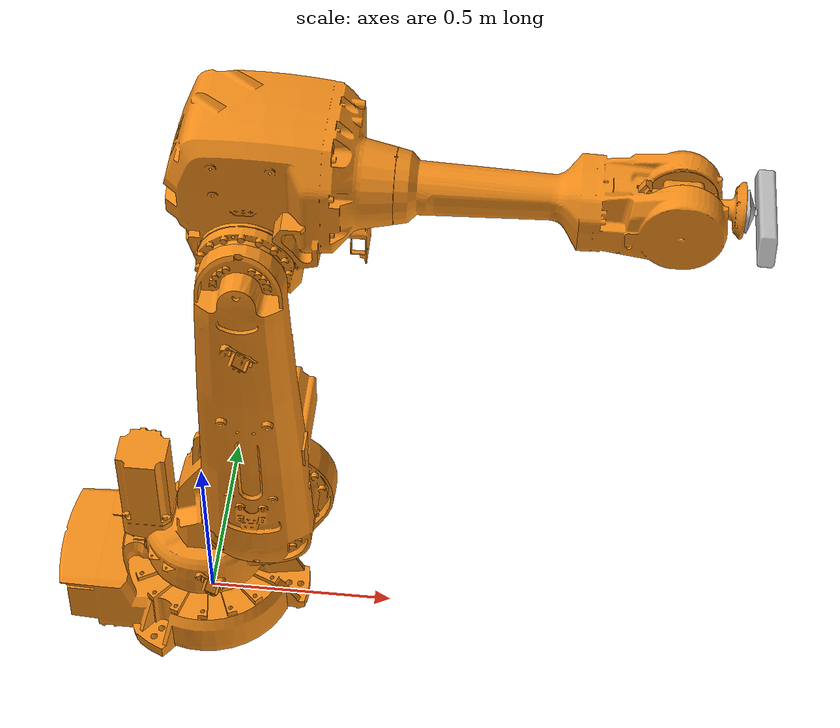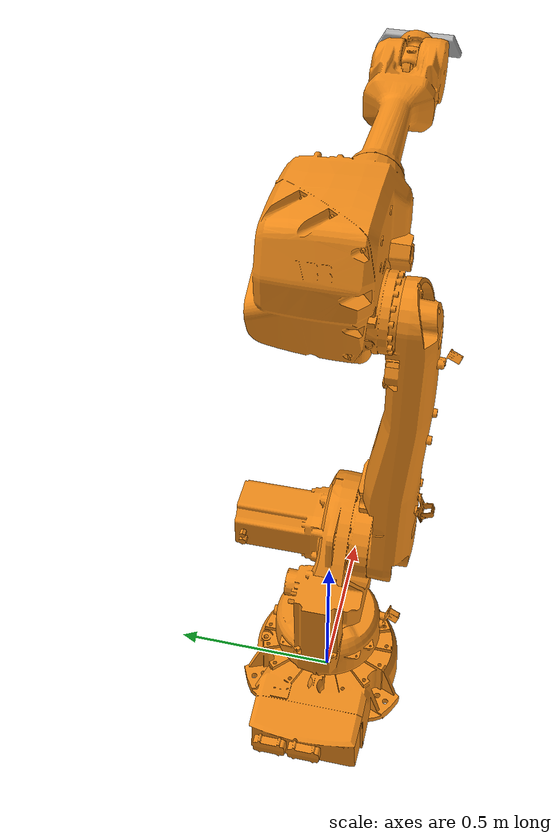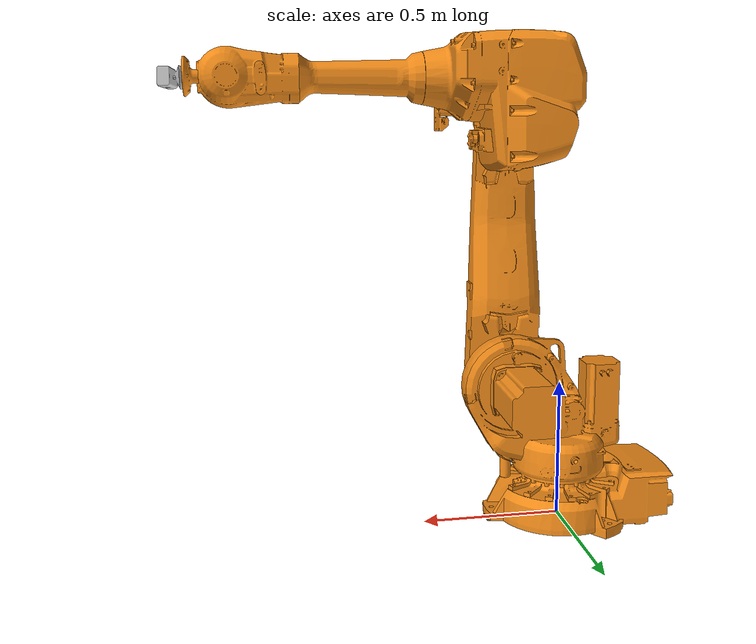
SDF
<?xml version='1.0'?>
<sdf version='1.6'>
  <model name='abb_irb'>
    <link name='base_link'>
      <pose frame=''>0 0 0 0 -0 0</pose>
      <inertial>
        <pose frame=''>0 0 0 0 -0 0</pose>
        <mass>1</mass>
        <inertia>
          <ixx>0.01</ixx>
          <ixy>0.01</ixy>
          <ixz>0.01</ixz>
          <iyy>0.01</iyy>
          <iyz>0.01</iyz>
          <izz>0.01</izz>
        </inertia>
      </inertial>
      <gravity>1</gravity>
      <velocity_decay/>
      <self_collide>0</self_collide>
      <enable_wind>0</enable_wind>
      <kinematic>0</kinematic>
      <visual name='base_link_visual'>
        <pose frame=''>0 0 0 0 -0 0</pose>
        <geometry>
          <mesh>
            <scale>1 1 1</scale>
            <uri>/home/user/move_it/CV8_2/src/abb_camera_simulation/meshes/abb_irb4600_60_205/visual/base_link.stl</uri>
          </mesh>
        </geometry>
        <material>
          <script>
            <name>Gazebo/Orange</name>
            <uri>file://media/materials/scripts/gazebo.material</uri>
          </script>
        </material>
        <transparency>0</transparency>
        <cast_shadows>1</cast_shadows>
      </visual>
      <collision name='base_link_collision'>
        <laser_retro>0</laser_retro>
        <max_contacts>10</max_contacts>
        <pose frame=''>0 0 0 0 -0 0</pose>
        <geometry>
          <mesh>
            <uri>/home/user/move_it/CV8_2/src/abb_camera_simulation/meshes/abb_irb4600_60_205/collision/base_link.stl</uri>
            <scale>1 1 1</scale>
          </mesh>
        </geometry>
        <surface>
          <friction>
            <ode>
              <mu>1</mu>
              <mu2>1</mu2>
              <fdir1>0 0 0</fdir1>
              <slip1>0</slip1>
              <slip2>0</slip2>
            </ode>
            <torsional>
              <coefficient>1</coefficient>
              <patch_radius>0</patch_radius>
              <surface_radius>0</surface_radius>
              <use_patch_radius>1</use_patch_radius>
              <ode>
                <slip>0</slip>
              </ode>
            </torsional>
          </friction>
          <bounce>
            <restitution_coefficient>0</restitution_coefficient>
            <threshold>1e+06</threshold>
          </bounce>
          <contact>
            <collide_without_contact>0</collide_without_contact>
            <collide_without_contact_bitmask>1</collide_without_contact_bitmask>
            <collide_bitmask>1</collide_bitmask>
            <ode>
              <soft_cfm>0</soft_cfm>
              <soft_erp>0.2</soft_erp>
              <kp>1e+13</kp>
              <kd>1</kd>
              <max_vel>0.01</max_vel>
              <min_depth>0</min_depth>
            </ode>
            <bullet>
              <split_impulse>1</split_impulse>
              <split_impulse_penetration_threshold>-0.01</split_impulse_penetration_threshold>
              <soft_cfm>0</soft_cfm>
              <soft_erp>0.2</soft_erp>
              <kp>1e+13</kp>
              <kd>1</kd>
            </bullet>
          </contact>
        </surface>
      </collision>
    </link>
    <link name='link_1'>
      <pose frame=''>0 -0 0.1535 0 -0 0</pose>
      <inertial>
        <pose frame=''>0 0 0 0 -0 0</pose>
        <mass>1</mass>
        <inertia>
          <ixx>0.01</ixx>
          <ixy>0.01</ixy>
          <ixz>0.01</ixz>
          <iyy>0.01</iyy>
          <iyz>0.01</iyz>
          <izz>0.01</izz>
        </inertia>
      </inertial>
      <gravity>1</gravity>
      <velocity_decay/>
      <self_collide>0</self_collide>
      <enable_wind>0</enable_wind>
      <kinematic>0</kinematic>
      <visual name='link_1_visual'>
        <pose frame=''>0 0 0 0 -0 0</pose>
        <geometry>
          <mesh>
            <scale>1 1 1</scale>
            <uri>/home/user/move_it/CV8_2/src/abb_camera_simulation/meshes/abb_irb4600_60_205/visual/link_1.stl</uri>
          </mesh>
        </geometry>
        <material>
          <script>
            <name>Gazebo/Orange</name>
            <uri>file://media/materials/scripts/gazebo.material</uri>
          </script>
        </material>
        <transparency>0</transparency>
        <cast_shadows>1</cast_shadows>
      </visual>
      <collision name='link_1_collision'>
        <laser_retro>0</laser_retro>
        <max_contacts>10</max_contacts>
        <pose frame=''>0 0 0 0 -0 0</pose>
        <geometry>
          <mesh>
            <uri>/home/user/move_it/CV8_2/src/abb_camera_simulation/meshes/abb_irb4600_60_205/collision/link_1.stl</uri>
            <scale>1 1 1</scale>
          </mesh>
        </geometry>
        <surface>
          <friction>
            <ode>
              <mu>1</mu>
              <mu2>1</mu2>
              <fdir1>0 0 0</fdir1>
              <slip1>0</slip1>
              <slip2>0</slip2>
            </ode>
            <torsional>
              <coefficient>1</coefficient>
              <patch_radius>0</patch_radius>
              <surface_radius>0</surface_radius>
              <use_patch_radius>1</use_patch_radius>
              <ode>
                <slip>0</slip>
              </ode>
            </torsional>
          </friction>
          <bounce>
            <restitution_coefficient>0</restitution_coefficient>
            <threshold>1e+06</threshold>
          </bounce>
          <contact>
            <collide_without_contact>0</collide_without_contact>
            <collide_without_contact_bitmask>1</collide_without_contact_bitmask>
            <collide_bitmask>1</collide_bitmask>
            <ode>
              <soft_cfm>0</soft_cfm>
              <soft_erp>0.2</soft_erp>
              <kp>1e+13</kp>
              <kd>1</kd>
              <max_vel>0.01</max_vel>
              <min_depth>0</min_depth>
            </ode>
            <bullet>
              <split_impulse>1</split_impulse>
              <split_impulse_penetration_threshold>-0.01</split_impulse_penetration_threshold>
              <soft_cfm>0</soft_cfm>
              <soft_erp>0.2</soft_erp>
              <kp>1e+13</kp>
              <kd>1</kd>
            </bullet>
          </contact>
        </surface>
      </collision>
    </link>
    <link name='link_2'>
      <pose frame=''>0.175 -0.051549 0.495 0 -0 0</pose>
      <inertial>
        <pose frame=''>0 0 0 0 -0 0</pose>
        <mass>1</mass>
        <inertia>
          <ixx>0.01</ixx>
          <ixy>0.01</ixy>
          <ixz>0.01</ixz>
          <iyy>0.01</iyy>
          <iyz>0.01</iyz>
          <izz>0.01</izz>
        </inertia>
      </inertial>
      <gravity>1</gravity>
      <velocity_decay/>
      <self_collide>0</self_collide>
      <enable_wind>0</enable_wind>
      <kinematic>0</kinematic>
      <visual name='link_2_visual'>
        <pose frame=''>0 0 0 0 -0 0</pose>
        <geometry>
          <mesh>
            <scale>1 1 1</scale>
            <uri>/home/user/move_it/CV8_2/src/abb_camera_simulation/meshes/abb_irb4600_60_205/visual/link_2.stl</uri>
          </mesh>
        </geometry>
        <material>
          <script>
            <name>Gazebo/Orange</name>
            <uri>file://media/materials/scripts/gazebo.material</uri>
          </script>
          <emissive>0 0 0 1</emissive>
        </material>
        <transparency>0</transparency>
        <cast_shadows>1</cast_shadows>
      </visual>
      <collision name='link_2_collision'>
        <laser_retro>0</laser_retro>
        <max_contacts>10</max_contacts>
        <pose frame=''>0 0 0 0 -0 0</pose>
        <geometry>
          <mesh>
            <uri>/home/user/move_it/CV8_2/src/abb_camera_simulation/meshes/abb_irb4600_60_205/collision/link_2.stl</uri>
            <scale>1 1 1</scale>
          </mesh>
        </geometry>
        <surface>
          <friction>
            <ode>
              <mu>1</mu>
              <mu2>1</mu2>
              <fdir1>0 0 0</fdir1>
              <slip1>0</slip1>
              <slip2>0</slip2>
            </ode>
            <torsional>
              <coefficient>1</coefficient>
              <patch_radius>0</patch_radius>
              <surface_radius>0</surface_radius>
              <use_patch_radius>1</use_patch_radius>
              <ode>
                <slip>0</slip>
              </ode>
            </torsional>
          </friction>
          <bounce>
            <restitution_coefficient>0</restitution_coefficient>
            <threshold>1e+06</threshold>
          </bounce>
          <contact>
            <collide_without_contact>0</collide_without_contact>
            <collide_without_contact_bitmask>1</collide_without_contact_bitmask>
            <collide_bitmask>1</collide_bitmask>
            <ode>
              <soft_cfm>0</soft_cfm>
              <soft_erp>0.2</soft_erp>
              <kp>1e+13</kp>
              <kd>1</kd>
              <max_vel>0.01</max_vel>
              <min_depth>0</min_depth>
            </ode>
            <bullet>
              <split_impulse>1</split_impulse>
              <split_impulse_penetration_threshold>-0.01</split_impulse_penetration_threshold>
              <soft_cfm>0</soft_cfm>
              <soft_erp>0.2</soft_erp>
              <kp>1e+13</kp>
              <kd>1</kd>
            </bullet>
          </contact>
        </surface>
      </collision>
    </link>
    <link name='link_3'>
      <pose frame=''>0.175 -0.051549 1.395 0 -0 0</pose>
      <inertial>
        <pose frame=''>0 0 0 0 -0 0</pose>
        <mass>1</mass>
        <inertia>
          <ixx>0.01</ixx>
          <ixy>0.01</ixy>
          <ixz>0.01</ixz>
          <iyy>0.01</iyy>
          <iyz>0.01</iyz>
          <izz>0.01</izz>
        </inertia>
      </inertial>
      <gravity>1</gravity>
      <velocity_decay/>
      <self_collide>0</self_collide>
      <enable_wind>0</enable_wind>
      <kinematic>0</kinematic>
      <visual name='link_3_visual'>
        <pose frame=''>0 0 0 0 -0 0</pose>
        <geometry>
          <mesh>
            <scale>1 1 1</scale>
            <uri>/home/user/move_it/CV8_2/src/abb_camera_simulation/meshes/abb_irb4600_60_205/visual/link_3.stl</uri>
          </mesh>
        </geometry>
        <material>
          <script>
            <name>Gazebo/Orange</name>
            <uri>file://media/materials/scripts/gazebo.material</uri>
          </script>
        </material>
        <transparency>0</transparency>
        <cast_shadows>1</cast_shadows>
      </visual>
      <collision name='link_3_collision'>
        <laser_retro>0</laser_retro>
        <max_contacts>10</max_contacts>
        <pose frame=''>0 0 0 0 -0 0</pose>
        <geometry>
          <mesh>
            <uri>/home/user/move_it/CV8_2/src/abb_camera_simulation/meshes/abb_irb4600_60_205/collision/link_3.stl</uri>
            <scale>1 1 1</scale>
          </mesh>
        </geometry>
        <surface>
          <friction>
            <ode>
              <mu>1</mu>
              <mu2>1</mu2>
              <fdir1>0 0 0</fdir1>
              <slip1>0</slip1>
              <slip2>0</slip2>
            </ode>
            <torsional>
              <coefficient>1</coefficient>
              <patch_radius>0</patch_radius>
              <surface_radius>0</surface_radius>
              <use_patch_radius>1</use_patch_radius>
              <ode>
                <slip>0</slip>
              </ode>
            </torsional>
          </friction>
          <bounce>
            <restitution_coefficient>0</restitution_coefficient>
            <threshold>1e+06</threshold>
          </bounce>
          <contact>
            <collide_without_contact>0</collide_without_contact>
            <collide_without_contact_bitmask>1</collide_without_contact_bitmask>
            <collide_bitmask>1</collide_bitmask>
            <ode>
              <soft_cfm>0</soft_cfm>
              <soft_erp>0.2</soft_erp>
              <kp>1e+13</kp>
              <kd>1</kd>
              <max_vel>0.01</max_vel>
              <min_depth>0</min_depth>
            </ode>
            <bullet>
              <split_impulse>1</split_impulse>
              <split_impulse_penetration_threshold>-0.01</split_impulse_penetration_threshold>
              <soft_cfm>0</soft_cfm>
              <soft_erp>0.2</soft_erp>
              <kp>1e+13</kp>
              <kd>1</kd>
            </bullet>
          </contact>
        </surface>
      </collision>
    </link>
    <link name='link_4'>
      <pose frame=''>0.5065 0 1.57 0 -0 0</pose>
      <inertial>
        <pose frame=''>0 0 0 0 -0 0</pose>
        <mass>1</mass>
        <inertia>
          <ixx>0.01</ixx>
          <ixy>0.01</ixy>
          <ixz>0.01</ixz>
          <iyy>0.01</iyy>
          <iyz>0.01</iyz>
          <izz>0.01</izz>
        </inertia>
      </inertial>
      <gravity>1</gravity>
      <velocity_decay/>
      <self_collide>0</self_collide>
      <enable_wind>0</enable_wind>
      <kinematic>0</kinematic>
      <visual name='link_4_visual'>
        <pose frame=''>0 0 0 0 -0 0</pose>
        <geometry>
          <mesh>
            <scale>1 1 1</scale>
            <uri>/home/user/move_it/CV8_2/src/abb_camera_simulation/meshes/abb_irb4600_60_205/visual/link_4.stl</uri>
          </mesh>
        </geometry>
        <material>
          <script>
            <name>Gazebo/Orange</name>
            <uri>file://media/materials/scripts/gazebo.material</uri>
          </script>
          <emissive>0 0 0 1</emissive>
        </material>
        <transparency>0</transparency>
        <cast_shadows>1</cast_shadows>
      </visual>
      <collision name='link_4_collision'>
        <laser_retro>0</laser_retro>
        <max_contacts>10</max_contacts>
        <pose frame=''>0 0 0 0 -0 0</pose>
        <geometry>
          <mesh>
            <uri>/home/user/move_it/CV8_2/src/abb_camera_simulation/meshes/abb_irb4600_60_205/collision/link_4.stl</uri>
            <scale>1 1 1</scale>
          </mesh>
        </geometry>
        <surface>
          <friction>
            <ode>
              <mu>1</mu>
              <mu2>1</mu2>
              <fdir1>0 0 0</fdir1>
              <slip1>0</slip1>
              <slip2>0</slip2>
            </ode>
            <torsional>
              <coefficient>1</coefficient>
              <patch_radius>0</patch_radius>
              <surface_radius>0</surface_radius>
              <use_patch_radius>1</use_patch_radius>
              <ode>
                <slip>0</slip>
              </ode>
            </torsional>
          </friction>
          <bounce>
            <restitution_coefficient>0</restitution_coefficient>
            <threshold>1e+06</threshold>
          </bounce>
          <contact>
            <collide_without_contact>0</collide_without_contact>
            <collide_without_contact_bitmask>1</collide_without_contact_bitmask>
            <collide_bitmask>1</collide_bitmask>
            <ode>
              <soft_cfm>0</soft_cfm>
              <soft_erp>0.2</soft_erp>
              <kp>1e+13</kp>
              <kd>1</kd>
              <max_vel>0.01</max_vel>
              <min_depth>0</min_depth>
            </ode>
            <bullet>
              <split_impulse>1</split_impulse>
              <split_impulse_penetration_threshold>-0.01</split_impulse_penetration_threshold>
              <soft_cfm>0</soft_cfm>
              <soft_erp>0.2</soft_erp>
              <kp>1e+13</kp>
              <kd>1</kd>
            </bullet>
          </contact>
        </surface>
      </collision>
    </link>
    <link name='link_5'>
      <pose frame=''>1.135 0 1.57 0 -0 0</pose>
      <inertial>
        <pose frame=''>0 0 0 0 -0 0</pose>
        <mass>1</mass>
        <inertia>
          <ixx>0.01</ixx>
          <ixy>0.01</ixy>
          <ixz>0.01</ixz>
          <iyy>0.01</iyy>
          <iyz>0.01</iyz>
          <izz>0.01</izz>
        </inertia>
      </inertial>
      <gravity>1</gravity>
      <velocity_decay/>
      <self_collide>0</self_collide>
      <enable_wind>0</enable_wind>
      <kinematic>0</kinematic>
      <visual name='link_5_visual'>
        <pose frame=''>0 0 0 0 -0 0</pose>
        <geometry>
          <mesh>
            <scale>1 1 1</scale>
            <uri>/home/user/move_it/CV8_2/src/abb_camera_simulation/meshes/abb_irb4600_60_205/visual/link_5.stl</uri>
          </mesh>
        </geometry>
        <material>
          <script>
            <name>Gazebo/Orange</name>
            <uri>file://media/materials/scripts/gazebo.material</uri>
          </script>
          <emissive>0 0 0 1</emissive>
        </material>
        <transparency>0</transparency>
        <cast_shadows>1</cast_shadows>
      </visual>
      <collision name='link_5_collision'>
        <laser_retro>0</laser_retro>
        <max_contacts>10</max_contacts>
        <pose frame=''>0 0 0 0 -0 0</pose>
        <geometry>
          <mesh>
            <uri>/home/user/move_it/CV8_2/src/abb_camera_simulation/meshes/abb_irb4600_60_205/collision/link_5.stl</uri>
            <scale>1 1 1</scale>
          </mesh>
        </geometry>
        <surface>
          <friction>
            <ode>
              <mu>1</mu>
              <mu2>1</mu2>
              <fdir1>0 0 0</fdir1>
              <slip1>0</slip1>
              <slip2>0</slip2>
            </ode>
            <torsional>
              <coefficient>1</coefficient>
              <patch_radius>0</patch_radius>
              <surface_radius>0</surface_radius>
              <use_patch_radius>1</use_patch_radius>
              <ode>
                <slip>0</slip>
              </ode>
            </torsional>
          </friction>
          <bounce>
            <restitution_coefficient>0</restitution_coefficient>
            <threshold>1e+06</threshold>
          </bounce>
          <contact>
            <collide_without_contact>0</collide_without_contact>
            <collide_without_contact_bitmask>1</collide_without_contact_bitmask>
            <collide_bitmask>1</collide_bitmask>
            <ode>
              <soft_cfm>0</soft_cfm>
              <soft_erp>0.2</soft_erp>
              <kp>1e+13</kp>
              <kd>1</kd>
              <max_vel>0.01</max_vel>
              <min_depth>0</min_depth>
            </ode>
            <bullet>
              <split_impulse>1</split_impulse>
              <split_impulse_penetration_threshold>-0.01</split_impulse_penetration_threshold>
              <soft_cfm>0</soft_cfm>
              <soft_erp>0.2</soft_erp>
              <kp>1e+13</kp>
              <kd>1</kd>
            </bullet>
          </contact>
        </surface>
      </collision>
    </link>
    <link name='link_6'>
      <pose frame=''>1.135 0 1.57 0 -0 0</pose>
      <inertial>
        <pose frame=''>0 0 0 0 -0 0</pose>
        <mass>1</mass>
        <inertia>
          <ixx>0.01</ixx>
          <ixy>0.01</ixy>
          <ixz>0.01</ixz>
          <iyy>0.01</iyy>
          <iyz>0.01</iyz>
          <izz>0.01</izz>
        </inertia>
      </inertial>
      <velocity_decay/>
      <velocity_decay/>
      <sensor name='kinect' type='depth'>
        <update_rate>10</update_rate>
        <visualize>1</visualize>
        <always_on>1</always_on>
        <camera name='depth_cam'>
          <horizontal_fov>1</horizontal_fov>
          <image>
            <width>640</width>
            <height>480</height>
            <format>R8G8B8</format>
          </image>
          <clip>
            <near>0.05</near>
            <far>30</far>
          </clip>
        </camera>
        <plugin name='kinect_controller' filename='libgazebo_ros_openni_kinect.so'>
          <alwaysOn>1</alwaysOn>
          <cameraName>kinect_ir</cameraName>
          <imageTopicName>/kinect/rgb/image_raw</imageTopicName>
          <cameraInfoTopicName>/kinect/depth/camera_info</cameraInfoTopicName>
          <depthImageTopicName>/kinect/depth/image_raw</depthImageTopicName>
          <depthImageInfoTopicName>/kinect/depth/depth_camera_info</depthImageInfoTopicName>
          <pointCloudTopicName>/kinect/depth/points</pointCloudTopicName>
          <frameName>kinect_frame</frameName>
          <pointCloudCutoff>0.4</pointCloudCutoff>
          <pointCloudCutoffMax>5.0</pointCloudCutoffMax>
          <distortionK1>0.0000000</distortionK1>
          <distortionK2>0.0000000</distortionK2>
          <distortionK3>0.0000000</distortionK3>
          <distortionT1>0.0000000</distortionT1>
          <distortionT2>0.0000000</distortionT2>
          <CxPrime>0</CxPrime>
          <Cx>0</Cx>
          <Cy>0</Cy>
          <focalLength>0</focalLength>
          <hackBaseline>0</hackBaseline>
          <robotNamespace>/</robotNamespace>
        </plugin>
        <pose frame=''>0.135 0 0 3.14159 1.57079 3.14159</pose>
      </sensor>
      <gravity>1</gravity>
      <velocity_decay/>
      <self_collide>0</self_collide>
      <enable_wind>0</enable_wind>
      <kinematic>0</kinematic>
      <visual name='link_6_visual'>
        <pose frame=''>0 0 0 0 -0 0</pose>
        <geometry>
          <mesh>
            <scale>1 1 1</scale>
            <uri>/home/user/move_it/CV8_2/src/abb_camera_simulation/meshes/abb_irb4600_60_205/visual/link_6.stl</uri>
          </mesh>
        </geometry>
        <material>
          <script>
            <name>Gazebo/Orange</name>
            <uri>file://media/materials/scripts/gazebo.material</uri>
          </script>
          <emissive>0 0 0 1</emissive>
        </material>
        <transparency>0</transparency>
        <cast_shadows>1</cast_shadows>
      </visual>
      <collision name='link_6_collision'>
        <laser_retro>0</laser_retro>
        <max_contacts>10</max_contacts>
        <pose frame=''>0 0 0 0 -0 0</pose>
        <geometry>
          <mesh>
            <uri>/home/user/move_it/CV8_2/src/abb_camera_simulation/meshes/abb_irb4600_60_205/collision/link_6.stl</uri>
            <scale>1 1 1</scale>
          </mesh>
        </geometry>
        <surface>
          <friction>
            <ode>
              <mu>1</mu>
              <mu2>1</mu2>
              <fdir1>0 0 0</fdir1>
              <slip1>0</slip1>
              <slip2>0</slip2>
            </ode>
            <torsional>
              <coefficient>1</coefficient>
              <patch_radius>0</patch_radius>
              <surface_radius>0</surface_radius>
              <use_patch_radius>1</use_patch_radius>
              <ode>
                <slip>0</slip>
              </ode>
            </torsional>
          </friction>
          <bounce>
            <restitution_coefficient>0</restitution_coefficient>
            <threshold>1e+06</threshold>
          </bounce>
          <contact>
            <collide_without_contact>0</collide_without_contact>
            <collide_without_contact_bitmask>1</collide_without_contact_bitmask>
            <collide_bitmask>1</collide_bitmask>
            <ode>
              <soft_cfm>0</soft_cfm>
              <soft_erp>0.2</soft_erp>
              <kp>1e+13</kp>
              <kd>1</kd>
              <max_vel>0.01</max_vel>
              <min_depth>0</min_depth>
            </ode>
            <bullet>
              <split_impulse>1</split_impulse>
              <split_impulse_penetration_threshold>-0.01</split_impulse_penetration_threshold>
              <soft_cfm>0</soft_cfm>
              <soft_erp>0.2</soft_erp>
              <kp>1e+13</kp>
              <kd>1</kd>
            </bullet>
          </contact>
        </surface>
      </collision>
    </link>
    <model name='kinect'>
      <pose frame=''>1.31845 0.000536 1.53468 3.14159 1.54867 3.14159</pose>
      <link name='link'>
        <inertial>
          <mass>0.1</mass>
        </inertial>
        <collision name='collision'>
          <geometry>
            <box>
              <size>0.073 0.276 0.072</size>
            </box>
          </geometry>
        </collision>
        <visual name='visual'>
          <geometry>
            <mesh>
              <uri>model://kinect/meshes/kinect.dae</uri>
            </mesh>
          </geometry>
        </visual>
        <sensor name='camera' type='depth'>
          <update_rate>20</update_rate>
          <camera name='__default__'>
            <horizontal_fov>1.0472</horizontal_fov>
            <image>
              <width>640</width>
              <height>480</height>
              <format>R8G8B8</format>
            </image>
            <clip>
              <near>0.05</near>
              <far>3</far>
            </clip>
          </camera>
        </sensor>
      </link>
    </model>
    <joint name='joint_1' type='revolute'>
      <parent>base_link</parent>
      <child>link_1</child>
      <pose frame=''>0 0 0 0 -0 0</pose>
      <axis>
        <xyz>0 -0 1</xyz>
        <use_parent_model_frame>1</use_parent_model_frame>
        <limit>
          <lower>-2.62</lower>
          <upper>2.62</upper>
          <effort>1000</effort>
          <velocity>3.05</velocity>
        </limit>
        <dynamics>
          <spring_reference>0</spring_reference>
          <spring_stiffness>0</spring_stiffness>
          <damping>0</damping>
          <friction>0</friction>
        </dynamics>
      </axis>
      <physics>
        <ode>
          <limit>
            <cfm>0</cfm>
            <erp>0.2</erp>
          </limit>
          <suspension>
            <cfm>0</cfm>
            <erp>0.2</erp>
          </suspension>
        </ode>
      </physics>
    </joint>
    <joint name='joint_2' type='revolute'>
      <parent>link_1</parent>
      <child>link_2</child>
      <pose frame=''>0 0 0 0 -0 0</pose>
      <axis>
        <xyz>0 1 0</xyz>
        <use_parent_model_frame>1</use_parent_model_frame>
        <limit>
          <lower>-1.57</lower>
          <upper>1.57</upper>
          <effort>1000</effort>
          <velocity>3.05</velocity>
        </limit>
        <dynamics>
          <spring_reference>0</spring_reference>
          <spring_stiffness>0</spring_stiffness>
          <damping>0</damping>
          <friction>0</friction>
        </dynamics>
      </axis>
      <physics>
        <ode>
          <limit>
            <cfm>0</cfm>
            <erp>0.2</erp>
          </limit>
          <suspension>
            <cfm>0</cfm>
            <erp>0.2</erp>
          </suspension>
        </ode>
      </physics>
    </joint>
    <joint name='joint_3' type='revolute'>
      <parent>link_2</parent>
      <child>link_3</child>
      <pose frame=''>0 0 0 0 -0 0</pose>
      <axis>
        <xyz>0 1 -0</xyz>
        <use_parent_model_frame>1</use_parent_model_frame>
        <limit>
          <lower>-3.14</lower>
          <upper>1.31</upper>
          <effort>1000</effort>
          <velocity>4.36</velocity>
        </limit>
        <dynamics>
          <spring_reference>0</spring_reference>
          <spring_stiffness>0</spring_stiffness>
          <damping>0</damping>
          <friction>0</friction>
        </dynamics>
      </axis>
      <physics>
        <ode>
          <limit>
            <cfm>0</cfm>
            <erp>0.2</erp>
          </limit>
          <suspension>
            <cfm>0</cfm>
            <erp>0.2</erp>
          </suspension>
        </ode>
      </physics>
    </joint>
    <joint name='joint_4' type='revolute'>
      <parent>link_3</parent>
      <child>link_4</child>
      <pose frame=''>0 0 0 0 -0 0</pose>
      <axis>
        <xyz>1 0 0</xyz>
        <use_parent_model_frame>1</use_parent_model_frame>
        <limit>
          <lower>-6.98</lower>
          <upper>6.98</upper>
          <effort>1000</effort>
          <velocity>4.36</velocity>
        </limit>
        <dynamics>
          <spring_reference>0</spring_reference>
          <spring_stiffness>0</spring_stiffness>
          <damping>0</damping>
          <friction>0</friction>
        </dynamics>
      </axis>
      <physics>
        <ode>
          <limit>
            <cfm>0</cfm>
            <erp>0.2</erp>
          </limit>
          <suspension>
            <cfm>0</cfm>
            <erp>0.2</erp>
          </suspension>
        </ode>
      </physics>
    </joint>
    <joint name='joint_5' type='revolute'>
      <parent>link_4</parent>
      <child>link_5</child>
      <pose frame=''>0 0 0 0 -0 0</pose>
      <axis>
        <xyz>0 1 -0</xyz>
        <use_parent_model_frame>1</use_parent_model_frame>
        <limit>
          <lower>-2.09</lower>
          <upper>2.18</upper>
          <effort>1000</effort>
          <velocity>4.36</velocity>
        </limit>
        <dynamics>
          <spring_reference>0</spring_reference>
          <spring_stiffness>0</spring_stiffness>
          <damping>0</damping>
          <friction>0</friction>
        </dynamics>
      </axis>
      <physics>
        <ode>
          <limit>
            <cfm>0</cfm>
            <erp>0.2</erp>
          </limit>
          <suspension>
            <cfm>0</cfm>
            <erp>0.2</erp>
          </suspension>
        </ode>
      </physics>
    </joint>
    <joint name='joint_6' type='revolute'>
      <parent>link_5</parent>
      <child>link_6</child>
      <pose frame=''>0 0 0 0 -0 0</pose>
      <axis>
        <xyz>1 0 0</xyz>
        <use_parent_model_frame>1</use_parent_model_frame>
        <limit>
          <lower>-6.98</lower>
          <upper>6.98</upper>
          <effort>1000</effort>
          <velocity>6.28</velocity>
        </limit>
        <dynamics>
          <spring_reference>0</spring_reference>
          <spring_stiffness>0</spring_stiffness>
          <damping>0</damping>
          <friction>0</friction>
        </dynamics>
      </axis>
      <physics>
        <ode>
          <limit>
            <cfm>0</cfm>
            <erp>0.2</erp>
          </limit>
          <suspension>
            <cfm>0</cfm>
            <erp>0.2</erp>
          </suspension>
        </ode>
      </physics>
    </joint>
    <joint name='link_6_JOINT_0' type='fixed'>
      <parent>link_6</parent>
      <child>kinect::link</child>
      <pose frame=''>0 0 0 0 -0 0</pose>
      <physics>
        <ode>
          <limit>
            <cfm>0</cfm>
            <erp>0.2</erp>
          </limit>
          <suspension>
            <cfm>0</cfm>
            <erp>0.2</erp>
          </suspension>
        </ode>
      </physics>
    </joint>
    <static>0</static>
    <allow_auto_disable>1</allow_auto_disable>
    <plugin name='gazebo_ros_control' filename='libgazebo_ros_control.so'>
      <robotNamespace>/abb_irb</robotNamespace>
    </plugin>
  </model>
</sdf>
